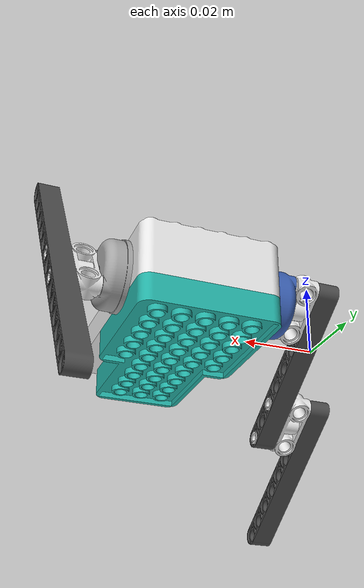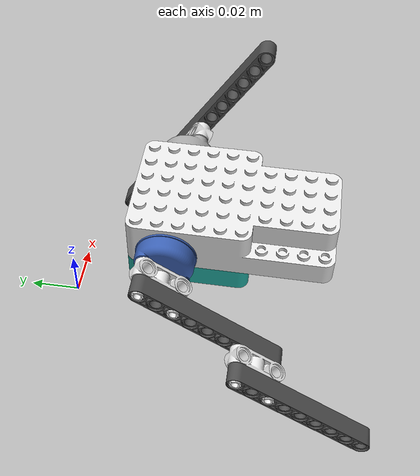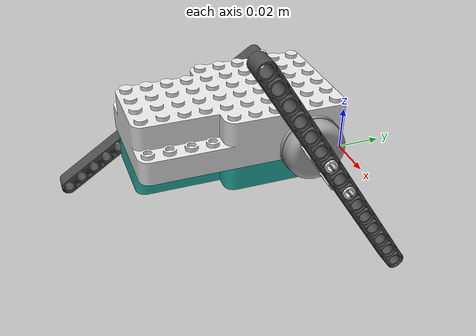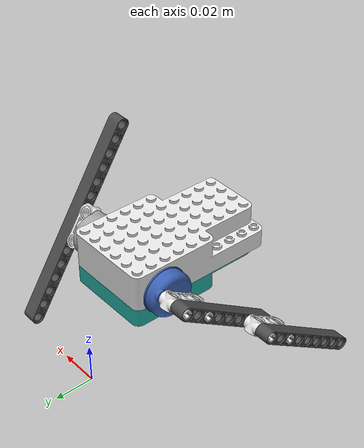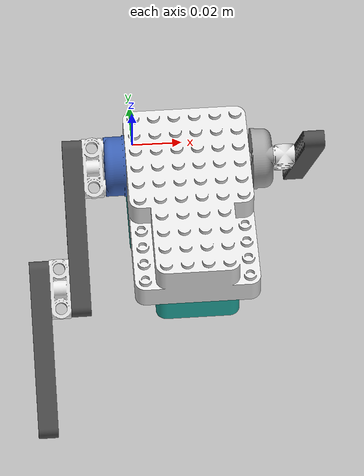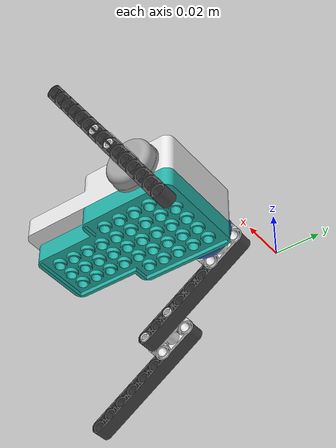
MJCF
<?xml version="1.0" ?>
<!-- Onshape https://cad.onshape.com/documents/b0e83dcbac7f4d1e539e8313/w/92469411fe2d9010acea0f56/e/97b6f2f25ccf1d3268eae09e -->
<mujoco model="TechElementSillyWalk">
  <compiler angle="radian" meshdir="assets" autolimits="true"/>
  <default>
    <default class="TechElementSillyWalk">
      <joint frictionloss="0.1" armature="0.005"/>
      <default class="lego_motor">
        <velocity kv="0.05" ctrlrange="-12.0428 12.0428" ctrllimited="true" forcerange="-0.3 0.3"/>
      </default>
      <default class="visual">
        <geom type="mesh" contype="0" conaffinity="0" group="2"/>
      </default>
      <default class="collision">
        <geom group="3" friction="3.0 0.02 0.001"/>
      </default>
    </default>
  </default>
  <worldbody>
    <!-- Link dmbase -->
    <body name="dmbase" pos="0 0 0" quat="1 0 0 0" childclass="TechElementSillyWalk">
      <freejoint/>
      <inertial pos="0.0188151 -0.0613202 0.0347779" mass="0.0625358" fullinertia="3.74349e-05 1.55601e-05 4.42105e-05 -7.202e-09 -5.6e-10 4.941e-08"/>
      <!-- Part dmbase -->
      <geom type="mesh" class="visual" pos="0.0188098 -0.0796657 0.0212604" quat="0.707107 0.707107 -0 0" mesh="dmbase" material="dmbase_material"/>
      <geom type="mesh" class="collision" pos="0.0188098 -0.0796657 0.0212604" quat="0.707107 0.707107 -0 0" mesh="dmbase" material="dmbase_material"/>
      <!-- Part dmtop -->
      <geom type="mesh" class="visual" pos="0.0188098 -0.0796657 0.0212604" quat="0.707107 0.707107 -0 0" mesh="dmtop" material="dmtop_material"/>
      <geom type="mesh" class="collision" pos="0.0188098 -0.0796657 0.0212604" quat="0.707107 0.707107 -0 0" mesh="dmtop" material="dmtop_material"/>
      <!-- Link dmright -->
      <body name="dmright" pos="-0.00519018 -0.0396657 0.0364604" quat="2.458e-09 0.707107 2.458e-09 0.707107">
        <!-- Joint from dmbase to dmright -->
        <joint axis="0 0 1" name="rightAngle" type="hinge"/>
        <inertial pos="-0.00398169 0.0059007 -0.00807564" mass="0.017314" fullinertia="6.31726e-06 3.99859e-06 7.20055e-06 2.86665e-06 -1.52275e-06 2.25798e-06"/>
        <!-- Part black_technic__liftarm_1_x_9_thick__configuration__1x9 -->
        <geom type="mesh" class="visual" pos="-0.0295444 0.0500184 -0.024275" quat="0.292462 0 -0 -0.956277" mesh="black_technic__liftarm_1_x_9_thick__configuration__1x9" material="black_technic__liftarm_1_x_9_thick__configuration__1x9_material"/>
        <geom type="mesh" class="collision" pos="-0.0295444 0.0500184 -0.024275" quat="0.292462 0 -0 -0.956277" mesh="black_technic__liftarm_1_x_9_thick__configuration__1x9" material="black_technic__liftarm_1_x_9_thick__configuration__1x9_material"/>
        <!-- Part light_bluish_gray_technic__pin_connector_perpendicular_3l_with_4_pins__configuration_double -->
        <geom type="mesh" class="visual" pos="-0.00447479 0.00663146 -0.01265" quat="0.62437 -0.62437 0.331908 -0.331908" mesh="light_bluish_gray_technic__pin_connector_perpendicular_3l_with_4_pins__configuration_double" material="light_bluish_gray_technic__pin_connector_perpendicular_3l_with_4_pins__configuration_double_material"/>
        <geom type="mesh" class="collision" pos="-0.00447479 0.00663146 -0.01265" quat="0.62437 -0.62437 0.331908 -0.331908" mesh="light_bluish_gray_technic__pin_connector_perpendicular_3l_with_4_pins__configuration_double" material="light_bluish_gray_technic__pin_connector_perpendicular_3l_with_4_pins__configuration_double_material"/>
        <!-- Part black_technic__liftarm_1_x_9_thick__configuration__1x9_2 -->
        <geom type="mesh" class="visual" pos="-0.0613359 0.0846623 -0.032025" quat="0 0.956277 0.292462 0" mesh="black_technic__liftarm_1_x_9_thick__configuration__1x9" material="black_technic__liftarm_1_x_9_thick__configuration__1x9_material"/>
        <geom type="mesh" class="collision" pos="-0.0613359 0.0846623 -0.032025" quat="0 0.956277 0.292462 0" mesh="black_technic__liftarm_1_x_9_thick__configuration__1x9" material="black_technic__liftarm_1_x_9_thick__configuration__1x9_material"/>
        <!-- Part dmright -->
        <geom type="mesh" class="visual" pos="-0.0349737 0.0246552 0.024" quat="0.62437 -0.331908 -0.62437 -0.331908" mesh="dmright" material="dmright_material"/>
        <geom type="mesh" class="collision" pos="-0.0349737 0.0246552 0.024" quat="0.62437 -0.331908 -0.62437 -0.331908" mesh="dmright" material="dmright_material"/>
        <!-- Part light_bluish_gray_technic__pin_connector_perpendicular_3l_with_4_pins__configuration_double_2 -->
        <geom type="mesh" class="visual" pos="-0.0304845 0.0451768 -0.02815" quat="0.62437 0.62437 -0.331908 -0.331908" mesh="light_bluish_gray_technic__pin_connector_perpendicular_3l_with_4_pins__configuration_double" material="light_bluish_gray_technic__pin_connector_perpendicular_3l_with_4_pins__configuration_double_material"/>
        <geom type="mesh" class="collision" pos="-0.0304845 0.0451768 -0.02815" quat="0.62437 0.62437 -0.331908 -0.331908" mesh="light_bluish_gray_technic__pin_connector_perpendicular_3l_with_4_pins__configuration_double" material="light_bluish_gray_technic__pin_connector_perpendicular_3l_with_4_pins__configuration_double_material"/>
      </body>
      <!-- Link dmleft -->
      <body name="dmleft" pos="0.0413098 -0.0396657 0.0364604" quat="0.707107 -2.458e-09 -0.707107 2.458e-09">
        <!-- Joint from dmbase to dmleft -->
        <joint axis="0 0 1" name="leftAngle" type="hinge"/>
        <inertial pos="-2.81851e-05 1.43042e-05 -0.0081629" mass="0.0155242" fullinertia="1.08141e-06 1.38902e-06 1.74224e-06 3.29533e-07 -4.407e-09 2.383e-09"/>
        <!-- Part light_bluish_gray_technic__pin_connector_perpendicular_3l_with_4_pins__configuration_double_3 -->
        <geom type="mesh" class="visual" pos="0.00632613 -0.00402866 -0.01565" quat="0.197811 0.197811 0.678875 0.678875" mesh="light_bluish_gray_technic__pin_connector_perpendicular_3l_with_4_pins__configuration_double" material="light_bluish_gray_technic__pin_connector_perpendicular_3l_with_4_pins__configuration_double_material"/>
        <geom type="mesh" class="collision" pos="0.00632613 -0.00402866 -0.01565" quat="0.197811 0.197811 0.678875 0.678875" mesh="light_bluish_gray_technic__pin_connector_perpendicular_3l_with_4_pins__configuration_double" material="light_bluish_gray_technic__pin_connector_perpendicular_3l_with_4_pins__configuration_double_material"/>
        <!-- Part black_technic__liftarm_1_x_15_thick__configuration__1x15 -->
        <geom type="mesh" class="visual" pos="-0.0470382 0.0340899 -0.027275" quat="0.481064 0 0 -0.876685" mesh="black_technic__liftarm_1_x_15_thick__configuration__1x15" material="black_technic__liftarm_1_x_15_thick__configuration__1x15_material"/>
        <geom type="mesh" class="collision" pos="-0.0470382 0.0340899 -0.027275" quat="0.481064 0 0 -0.876685" mesh="black_technic__liftarm_1_x_15_thick__configuration__1x15" material="black_technic__liftarm_1_x_15_thick__configuration__1x15_material"/>
        <!-- Part dmleft -->
        <geom type="mesh" class="visual" pos="-0.0255746 0.0343071 0.021" quat="0.197811 -0.678875 0.197811 0.678875" mesh="dmleft" material="dmleft_material"/>
        <geom type="mesh" class="collision" pos="-0.0255746 0.0343071 0.021" quat="0.197811 -0.678875 0.197811 0.678875" mesh="dmleft" material="dmleft_material"/>
      </body>
    </body>
  </worldbody>
  <asset>
    <mesh file="dmtop.stl"/>
    <mesh file="dmbase.stl"/>
    <mesh file="dmleft.stl"/>
    <mesh file="black_technic__liftarm_1_x_9_thick__configuration__1x9.stl"/>
    <mesh file="dmright.stl"/>
    <mesh file="black_technic__liftarm_1_x_15_thick__configuration__1x15.stl"/>
    <mesh file="light_bluish_gray_technic__pin_connector_perpendicular_3l_with_4_pins__configuration_double.stl"/>
    <material name="dmbase_material" rgba="0.141176 0.694118 0.65098 1"/>
    <material name="dmtop_material" rgba="0.901961 0.901961 0.901961 1"/>
    <material name="black_technic__liftarm_1_x_9_thick__configuration__1x9_material" rgba="0.301961 0.301961 0.301961 1"/>
    <material name="light_bluish_gray_technic__pin_connector_perpendicular_3l_with_4_pins__configuration_double_material" rgba="0.917647 0.917647 0.917647 1"/>
    <material name="dmright_material" rgba="0.231373 0.380392 0.705882 1"/>
    <material name="black_technic__liftarm_1_x_15_thick__configuration__1x15_material" rgba="0.301961 0.301961 0.301961 1"/>
    <material name="dmleft_material" rgba="0.647059 0.647059 0.647059 1"/>
  </asset>
  <actuator>
    <velocity class="lego_motor" name="rightAngle" joint="rightAngle"/>
    <velocity class="lego_motor" name="leftAngle" joint="leftAngle"/>
  </actuator>
  <equality/>
</mujoco>
